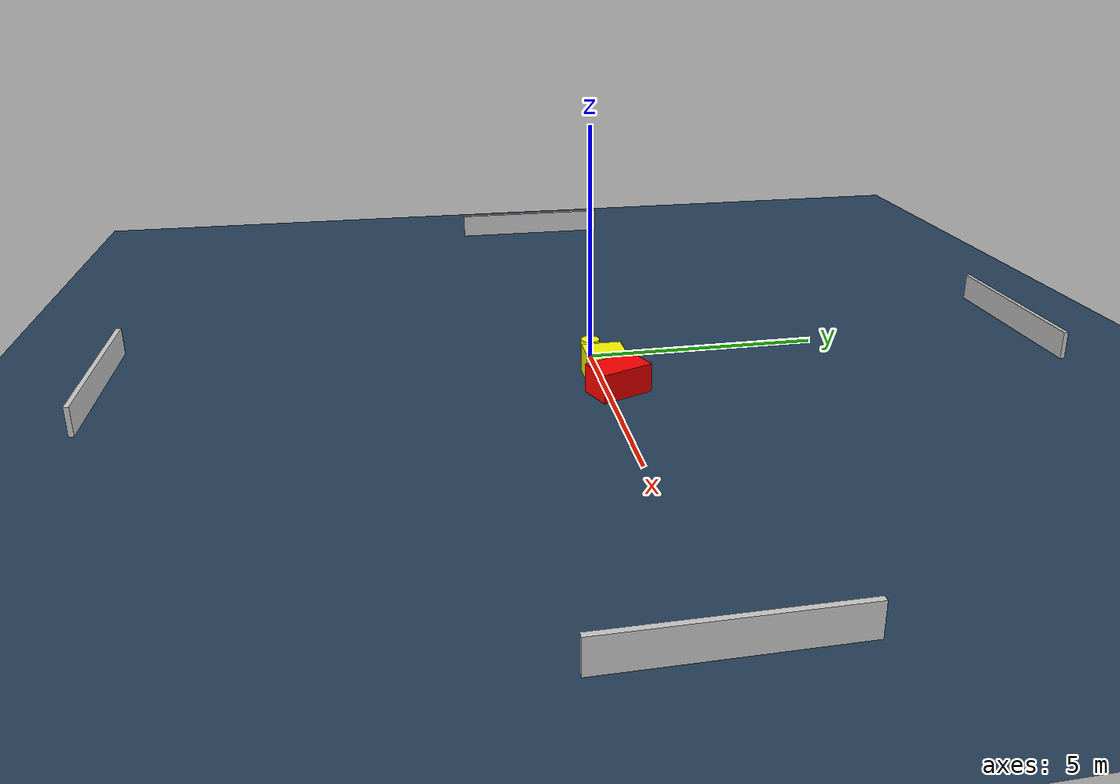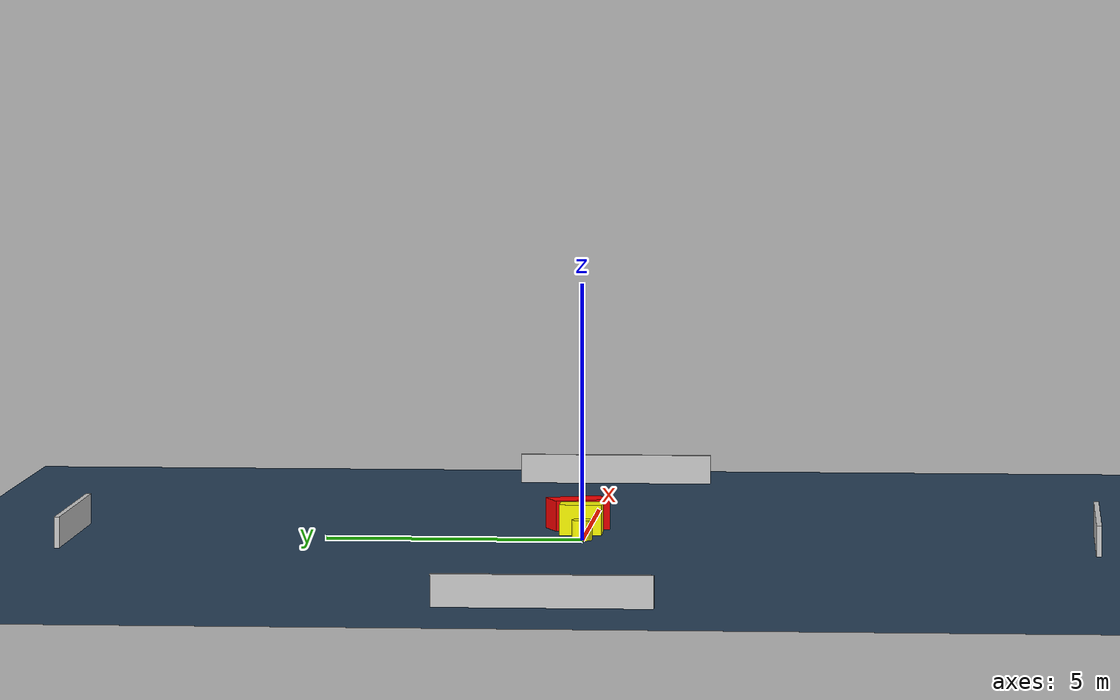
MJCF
<?xml version="1.0" ?>
<mujoco model="generated_environment">
  <option timestep="0.01" integrator="RK4" cone="elliptic"/>
  <default>
    <geom density="1"/>
  </default>
  <asset>
    <texture builtin="gradient" height="3072" name="skybox" rgb1="0.3 0.5 0.7" rgb2="0 0 0" type="skybox" width="512"/>
    <texture builtin="checker" height="300" name="groundplane" rgb1="0.2 0.3 0.4" rgb2="0.1 0.2 0.3" type="2d" width="300"/>
    <material name="groundplane" reflectance="0.2" texrepeat="5 5" texture="groundplane"/>
  </asset>
  <worldbody>
    <light dir="0 0 -1" directional="true" pos="0 0 1.5"/>
    <geom condim="3" friction="0.5 0.005 0.001" material="groundplane" name="floor" pos="0 0 0" size="0 0 0.05" type="plane"/>
    <body name="walls">
      <geom name="wall_1" condim="4" pos="-10.0 0.0 0.3" rgba="0.800000011920929 0.800000011920929 0.800000011920929 1.0" size="0.05 2.0 0.3" type="box"/>
      <geom name="wall_2" condim="4" pos="10.0 0.0 0.3" rgba="0.800000011920929 0.800000011920929 0.800000011920929 1.0" size="0.05 2.0 0.3" type="box"/>
      <geom name="wall_3" condim="4" pos="0.0 -10.0 0.3" rgba="0.800000011920929 0.800000011920929 0.800000011920929 1.0" size="2.0 0.05 0.3" type="box"/>
      <geom name="wall_4" condim="4" pos="0.0 10.0 0.3" rgba="0.800000011920929 0.800000011920929 0.800000011920929 1.0" size="2.0 0.05 0.3" type="box"/>
    </body>
    <body name="robot">
      <joint name="joint_x" type="slide" pos="0 0 0" axis="1 0 0"/>
      <joint name="joint_y" type="slide" pos="0 0 0" axis="0 1 0"/>
      <geom name="robot" type="cylinder" pos="0.0 0.0 0.2" size="0.2 0.2 0.0" mass="5.0" friction="1.0 0.005 0.0001" condim="4" rgba="1.0 1.0 0.0 1.0"/>
    </body>
    <body name="obstacle_1_movable">
      <geom name="obstacle_1_movable" condim="4" pos="1.0457045419165505 0.0895137269427191 0.3" euler="0 0 0.8145420876219278" friction="0.0 0.005 0.001" rgba="1.0 1.0 0.0 1.0" size="0.30216971546034477 0.4136657001094574 0.3" type="box" mass="0.1"/>
      <joint type="free"/>
    </body>
    <body name="obstacle_2_static">
      <geom name="obstacle_2_static" condim="4" pos="1.8918114133495212 0.2172285009592302 0.3" euler="0 0 291.87608883316665" friction="0.0 0.005 0.001" rgba="1.0 0.0 0.0 1.0" size="0.5605740144047817 0.35235207946872993 0.3" type="box"/>
    </body>
  </worldbody>
  <actuator>
    <motor name="actuator_x" joint="joint_x" gear="1" ctrlrange="-1 1"/>
    <motor name="actuator_y" joint="joint_y" gear="1" ctrlrange="-1 1"/>
  </actuator>
</mujoco>
